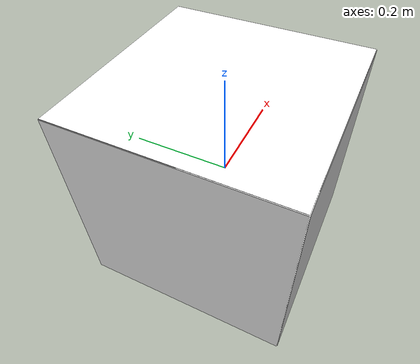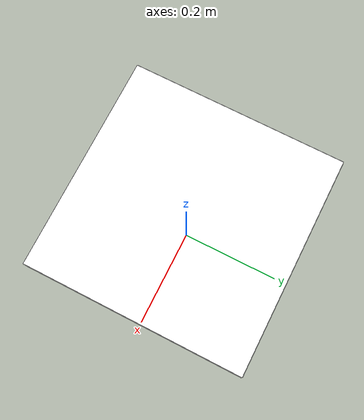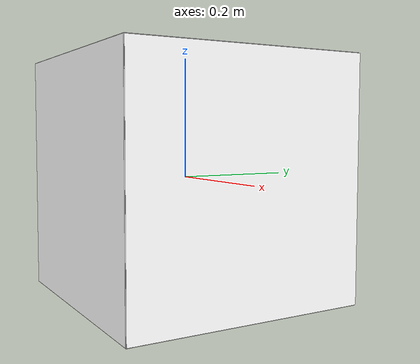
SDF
<?xml version="1.0"?>
<sdf version="1.6">
  <model name="aruco_marker_0">
    <static>true</static>
    <link name="link">
      <collision name="collision">
        <geometry>
          <box>
            <size>0.40 0.40 0.40</size>
          </box>
        </geometry>
      </collision>

      <visual name="aruco_front">
        <pose>0.201 0 0 0 1.5708 0</pose>
        <geometry>
          <plane>
            <normal>0 0 1</normal>
            <size>0.40 0.40</size>
          </plane>
        </geometry>
        <material>
          <script>
            <uri>model://aruco_marker_0/materials/scripts</uri>
            <uri>model://aruco_marker_0/materials/textures</uri>
            <name>ODIN/ArucoMarker0</name>
          </script>
          <ambient>1 1 1 1</ambient>
          <diffuse>1 1 1 1</diffuse>
        </material>
      </visual>

      <visual name="aruco_back">
        <pose>-0.201 0 0 0 -1.5708 0</pose>
        <geometry>
          <plane>
            <normal>0 0 1</normal>
            <size>0.40 0.40</size>
          </plane>
        </geometry>
        <material>
          <script>
            <uri>model://aruco_marker_0/materials/scripts</uri>
            <uri>model://aruco_marker_0/materials/textures</uri>
            <name>ODIN/ArucoMarker0</name>
          </script>
          <ambient>1 1 1 1</ambient>
          <diffuse>1 1 1 1</diffuse>
        </material>
      </visual>

      <visual name="aruco_left">
        <pose>0 0.201 0 -1.5708 0 0</pose>
        <geometry>
          <plane>
            <normal>0 0 1</normal>
            <size>0.40 0.40</size>
          </plane>
        </geometry>
        <material>
          <script>
            <uri>model://aruco_marker_0/materials/scripts</uri>
            <uri>model://aruco_marker_0/materials/textures</uri>
            <name>ODIN/ArucoMarker0</name>
          </script>
          <ambient>1 1 1 1</ambient>
          <diffuse>1 1 1 1</diffuse>
        </material>
      </visual>

      <visual name="aruco_right">
        <pose>0 -0.201 0 1.5708 0 0</pose>
        <geometry>
          <plane>
            <normal>0 0 1</normal>
            <size>0.40 0.40</size>
          </plane>
        </geometry>
        <material>
          <script>
            <uri>model://aruco_marker_0/materials/scripts</uri>
            <uri>model://aruco_marker_0/materials/textures</uri>
            <name>ODIN/ArucoMarker0</name>
          </script>
          <ambient>1 1 1 1</ambient>
          <diffuse>1 1 1 1</diffuse>
        </material>
      </visual>

      <visual name="aruco_top">
        <pose>0 0 0.201 0 0 0</pose>
        <geometry>
          <plane>
            <normal>0 0 1</normal>
            <size>0.40 0.40</size>
          </plane>
        </geometry>
        <material>
          <script>
            <uri>model://aruco_marker_0/materials/scripts</uri>
            <uri>model://aruco_marker_0/materials/textures</uri>
            <name>ODIN/ArucoMarker0</name>
          </script>
          <ambient>1 1 1 1</ambient>
          <diffuse>1 1 1 1</diffuse>
        </material>
      </visual>

      <visual name="aruco_bottom">
        <pose>0 0 -0.201 3.1416 0 0</pose>
        <geometry>
          <plane>
            <normal>0 0 1</normal>
            <size>0.40 0.40</size>
          </plane>
        </geometry>
        <material>
          <script>
            <uri>model://aruco_marker_0/materials/scripts</uri>
            <uri>model://aruco_marker_0/materials/textures</uri>
            <name>ODIN/ArucoMarker0</name>
          </script>
          <ambient>1 1 1 1</ambient>
          <diffuse>1 1 1 1</diffuse>
        </material>
      </visual>
    </link>
  </model>
</sdf>
